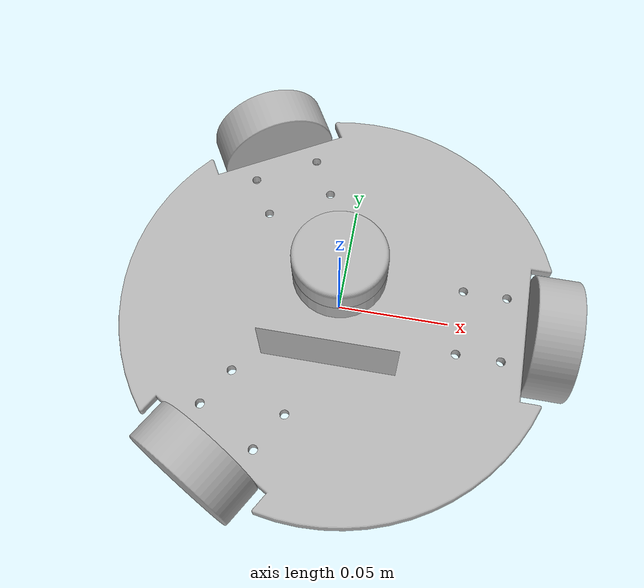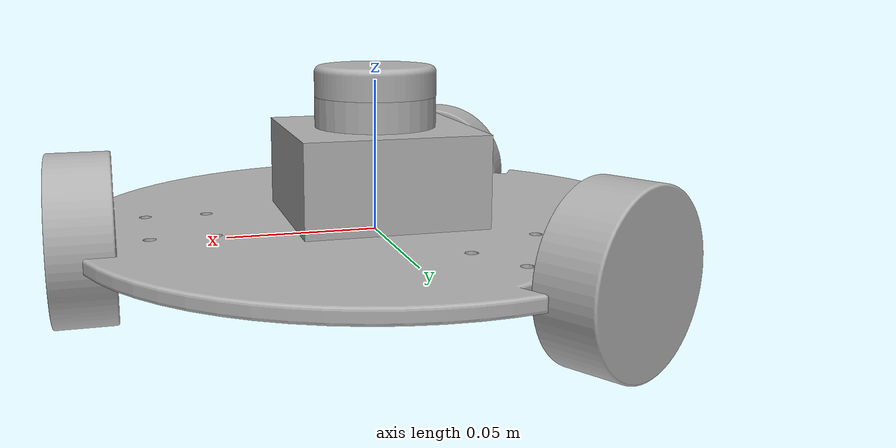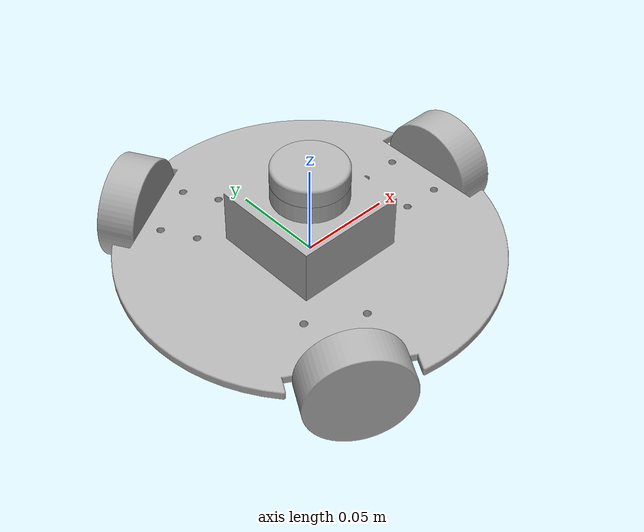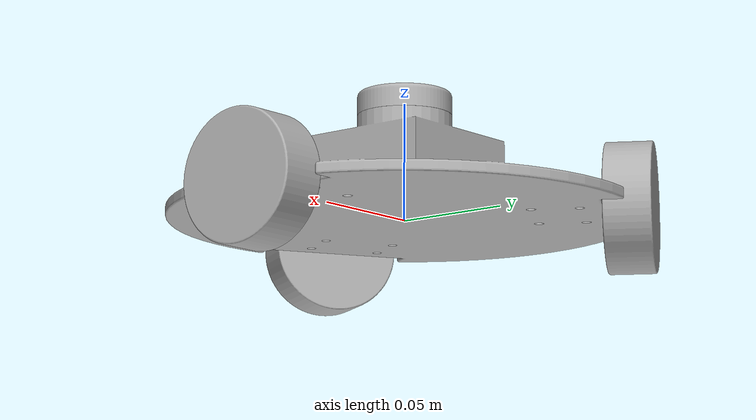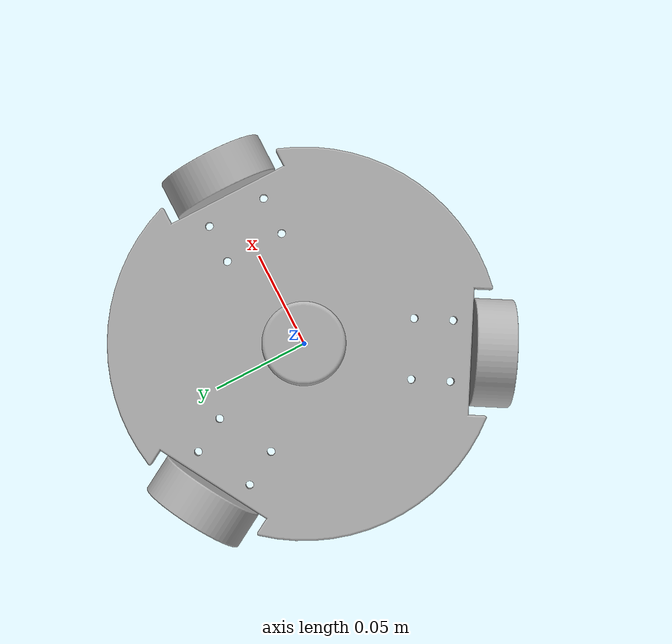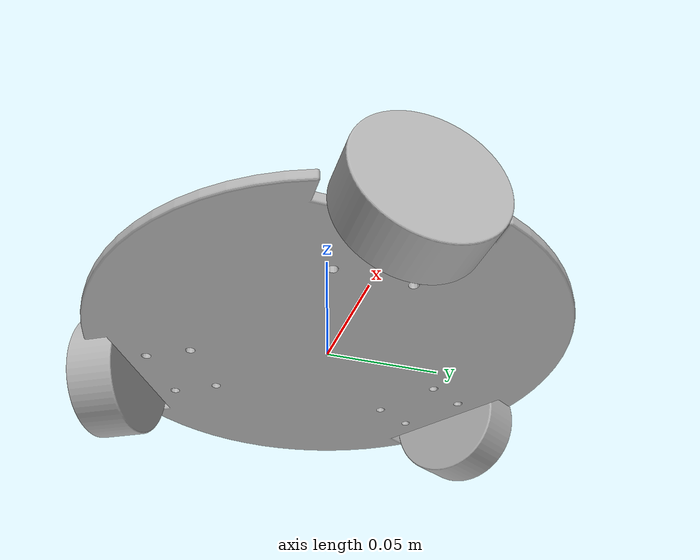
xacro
<?xml version="1.0" ?>
<robot name="ADHIC_MK1" xmlns:xacro="http://www.ros.org/wiki/xacro">

<xacro:include filename="$(find ADHIC_MK1_description)/urdf/materials.xacro" />
<xacro:include filename="$(find ADHIC_MK1_description)/urdf/ADHIC_MK1.trans" />
<xacro:include filename="$(find ADHIC_MK1_description)/urdf/ADHIC_MK1.gazebo" />
<link name="base_footprint"></link>
<link name="base_link">
  <inertial>
    <origin xyz="-2.9511891509591513e-06 -1.3372527746128272e-06 0.011451580865788475" rpy="0 0 0"/>
    <mass value="0.27960516127734214"/>
    <inertia ixx="0.00043" iyy="0.00043" izz="0.000779" ixy="-0.0" iyz="-0.0" ixz="-0.0"/>
  </inertial>
  <visual>
    <origin xyz="0 0 0" rpy="0 0 0"/>
    <geometry>
      <mesh filename="package://ADHIC_MK1_description/meshes/base_link.stl" scale="0.001 0.001 0.001"/>
    </geometry>
    <material name="silver"/>
  </visual>
  <collision>
    <origin xyz="0 0 0" rpy="0 0 0"/>
    <geometry>
      <mesh filename="package://ADHIC_MK1_description/meshes/base_link.stl" scale="0.001 0.001 0.001"/>
    </geometry>
  </collision>
</link>
<joint name="j1" type="fixed">
  <parent link="base_footprint"/>
  <child link="base_link"/>
</joint>
<link name="front_wheel_1">
  <inertial>
    <origin xyz="0.010000081908895259 1.1991332257731732e-06 5.637851296924623e-18" rpy="0 0 0"/>
    <mass value="0.04415682461392496"/>
    <inertia ixx="1.7e-05" iyy="1e-05" izz="1e-05" ixy="0.0" iyz="0.0" ixz="0.0"/>
  </inertial>
  <visual>
    <origin xyz="-0.084977 9.5e-05 -0.0025" rpy="0 0 0"/>
    <geometry>
      <mesh filename="package://ADHIC_MK1_description/meshes/front_wheel_1.stl" scale="0.001 0.001 0.001"/>
    </geometry>
    <material name="silver"/>
  </visual>
  <collision>
    <origin xyz="-0.084977 9.5e-05 -0.0025" rpy="0 0 0"/>
    <geometry>
      <mesh filename="package://ADHIC_MK1_description/meshes/front_wheel_1.stl" scale="0.001 0.001 0.001"/>
    </geometry>
  </collision>
</link>

<link name="right_wheel_1">
  <inertial>
    <origin xyz="-0.004998336805243447 -0.008661730696894576 0.0" rpy="0 0 0"/>
    <mass value="0.04415682461392497"/>
    <inertia ixx="1.2e-05" iyy="1.5e-05" izz="1e-05" ixy="3e-06" iyz="-0.0" ixz="0.0"/>
  </inertial>
  <visual>
    <origin xyz="0.042626 0.073569 -0.0025" rpy="0 0 0"/>
    <geometry>
      <mesh filename="package://ADHIC_MK1_description/meshes/right_wheel_1.stl" scale="0.001 0.001 0.001"/>
    </geometry>
    <material name="silver"/>
  </visual>
  <collision>
    <origin xyz="0.042626 0.073569 -0.0025" rpy="0 0 0"/>
    <geometry>
      <mesh filename="package://ADHIC_MK1_description/meshes/right_wheel_1.stl" scale="0.001 0.001 0.001"/>
    </geometry>
  </collision>
</link>

<link name="left_wheel_1">
  <inertial>
    <origin xyz="-0.00500000063329932 0.00866041445642833 -6.5052130349130266e-18" rpy="0 0 0"/>
    <mass value="0.044156824613925"/>
    <inertia ixx="1.2e-05" iyy="1.5e-05" izz="1e-05" ixy="-3e-06" iyz="-0.0" ixz="0.0"/>
  </inertial>
  <visual>
    <origin xyz="0.0425 -0.073612 -0.0025" rpy="0 0 0"/>
    <geometry>
      <mesh filename="package://ADHIC_MK1_description/meshes/left_wheel_1.stl" scale="0.001 0.001 0.001"/>
    </geometry>
    <material name="silver"/>
  </visual>
  <collision>
    <origin xyz="0.0425 -0.073612 -0.0025" rpy="0 0 0"/>
    <geometry>
      <mesh filename="package://ADHIC_MK1_description/meshes/left_wheel_1.stl" scale="0.001 0.001 0.001"/>
    </geometry>
  </collision>
</link>

<link name="lidar_1">
  <inertial>
    <origin xyz="0.0 0.0 0.004961499895961605" rpy="0 0 0"/>
    <mass value="0.013208564017288198"/>
    <inertia ixx="1e-06" iyy="1e-06" izz="3e-06" ixy="0.0" iyz="0.0" ixz="0.0"/>
  </inertial>
  <visual>
    <origin xyz="-0.0 -0.0 -0.045" rpy="0 0 0"/>
    <geometry>
      <mesh filename="package://ADHIC_MK1_description/meshes/lidar_1.stl" scale="0.001 0.001 0.001"/>
    </geometry>
    <material name="silver"/>
  </visual>
  <collision>
    <origin xyz="-0.0 -0.0 -0.045" rpy="0 0 0"/>
    <geometry>
      <mesh filename="package://ADHIC_MK1_description/meshes/lidar_1.stl" scale="0.001 0.001 0.001"/>
    </geometry>
  </collision>
</link>

<joint name="Rev1" type="continuous">
  <origin xyz="0.084977 -9.5e-05 0.0025" rpy="0 0 0"/>
  <parent link="base_link"/>
  <child link="front_wheel_1"/>
  <axis xyz="1.0 0.000132 0.0"/>
</joint>

<joint name="Rev2" type="continuous">
  <origin xyz="-0.042626 -0.073569 0.0025" rpy="0 0 0"/>
  <parent link="base_link"/>
  <child link="right_wheel_1"/>
  <axis xyz="-0.499827 -0.866126 0.0"/>
</joint>

<joint name="Rev3" type="continuous">
  <origin xyz="-0.0425 0.073612 0.0025" rpy="0 0 0"/>
  <parent link="base_link"/>
  <child link="left_wheel_1"/>
  <axis xyz="-0.5 0.866025 0.0"/>
</joint>

<joint name="Rigid4" type="fixed">
  <origin xyz="0.0 0.0 0.045" rpy="0 0 0"/>
  <parent link="base_link"/>
  <child link="lidar_1"/>
</joint>

</robot>

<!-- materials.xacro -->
<robot name="ADHIC_MK1" xmlns:xacro="http://www.ros.org/wiki/xacro" >

<material name="silver">
  <color rgba="0.700 0.700 0.700 1.000"/>
</material>

</robot>

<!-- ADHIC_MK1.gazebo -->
<robot name="ADHIC_MK1" xmlns:xacro="http://www.ros.org/wiki/xacro" >

<xacro:property name="body_color" value="Gazebo/Silver" />

<gazebo>
  <plugin name="control" filename="libgazebo_ros_control.so"/>
</gazebo>
<gazebo reference="base_link">
  <material>${body_color}</material>
  <mu1>0.2</mu1>
  <mu2>0.2</mu2>
  <selfCollide>true</selfCollide>
  <gravity>true</gravity>
</gazebo>

<gazebo reference="front_wheel_1">
  <material>${body_color}</material>
  <mu1>0.2</mu1>
  <mu2>0.2</mu2>
  <selfCollide>true</selfCollide>
</gazebo>

<gazebo reference="right_wheel_1">
  <material>${body_color}</material>
  <mu1>0.2</mu1>
  <mu2>0.2</mu2>
  <selfCollide>true</selfCollide>
</gazebo>

<gazebo reference="left_wheel_1">
  <material>${body_color}</material>
  <mu1>0.2</mu1>
  <mu2>0.2</mu2>
  <selfCollide>true</selfCollide>
</gazebo>

<gazebo reference="lidar_1">
  <material>${body_color}</material>
  <mu1>0.2</mu1>
  <mu2>0.2</mu2>
  <selfCollide>true</selfCollide>
</gazebo>

<gazebo>
    <plugin name="object_controller" filename="libgazebo_ros_planar_move.so">
    </plugin>
  </gazebo>

 <gazebo>
    <plugin name="right_force" filename="libcustom_force.so" >
      <bodyName>right_wheel_1</bodyName>
      <topicName>right_wheel_force</topicName>
    </plugin>
  </gazebo>

  <gazebo>
    <plugin name="left_force" filename="libcustom_force.so" >
      <bodyName>left_wheel_1</bodyName>
      <topicName>left_wheel_force</topicName>
    </plugin>
  </gazebo>

  <gazebo>
    <plugin name="front_force" filename="libcustom_force.so" >
      <bodyName>front_wheel_1</bodyName>
      <topicName>front_wheel_force</topicName>
    </plugin>
   </gazebo>

    <!-- hokuyo -->
  <gazebo reference="lidar_1">
    <sensor type="ray" name="head_hokuyo_sensor">
      <pose>0 0 0 0 0 0</pose>
      <visualize>true</visualize>
      <update_rate>40</update_rate>
      <ray>
        <scan>
          <horizontal>
            <samples>720</samples>
            <resolution>1</resolution>
            <min_angle>-1.570796</min_angle>
            <max_angle>1.570796</max_angle>
          </horizontal>
        </scan>
        <range>
          <min>0.10</min>
          <max>2</max>
          <resolution>0.01</resolution>
        </range>
        <noise>
          <type>gaussian</type>
          <mean>0.0</mean>
          <stddev>0.01</stddev>
        </noise>
      </ray>
      <plugin name="gazebo_ros_head_hokuyo_controller" filename="libgazebo_ros_laser.so">
        <topicName>/bot/scan</topicName>
        <frameName>lidar_1</frameName>
      </plugin>
    </sensor>
  </gazebo>

</robot>
